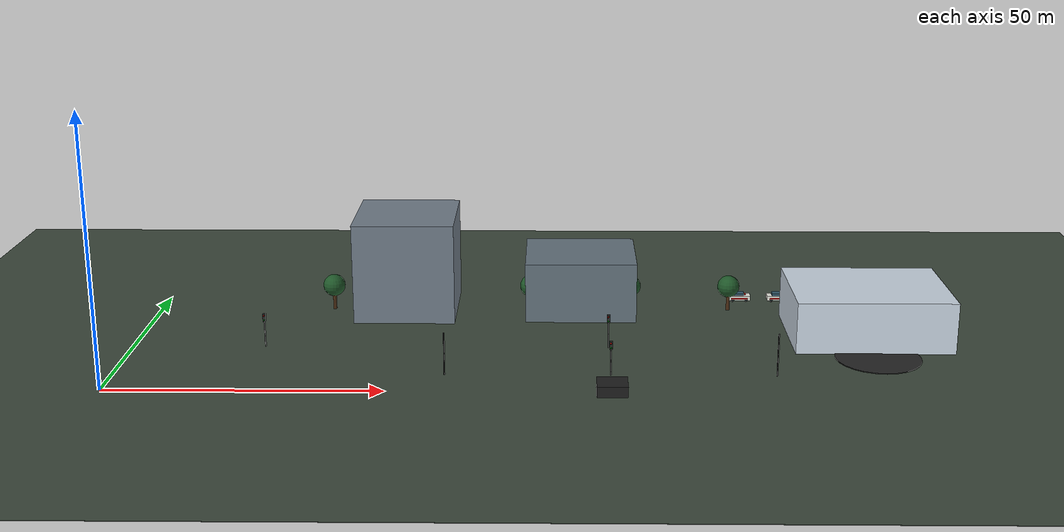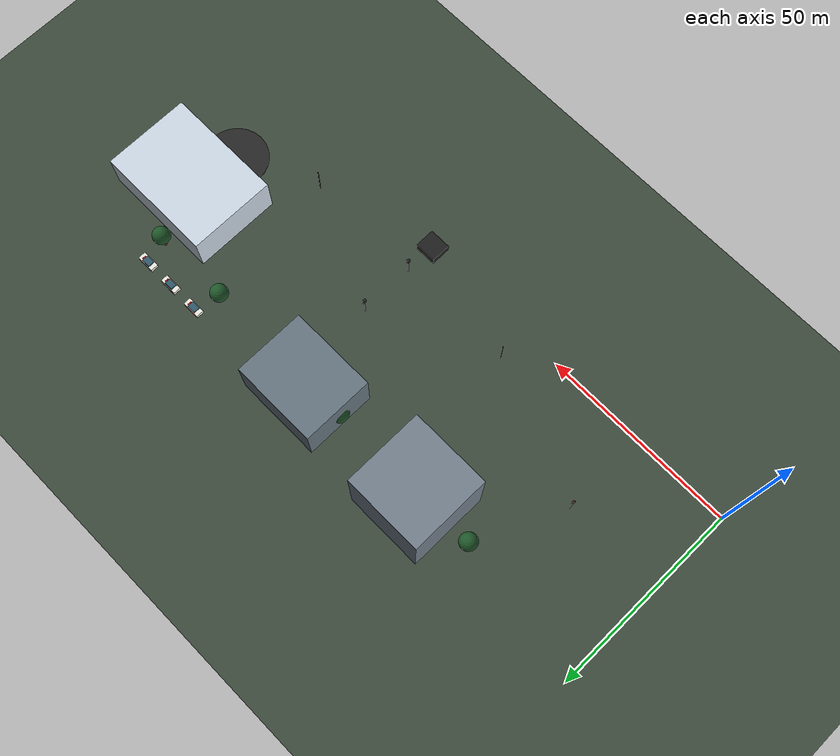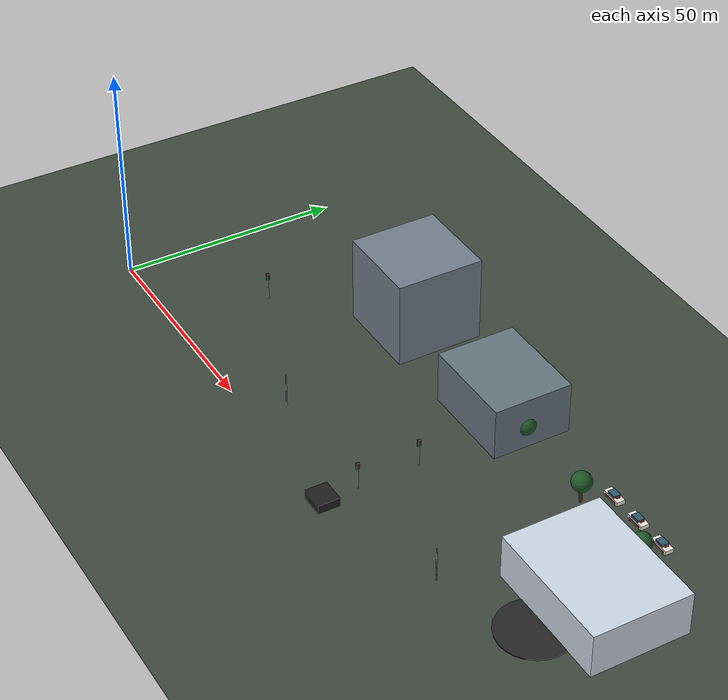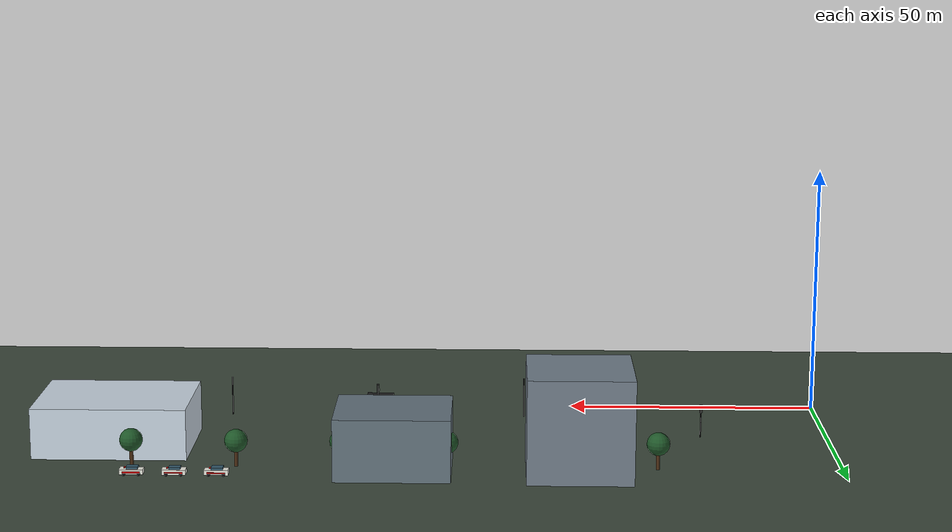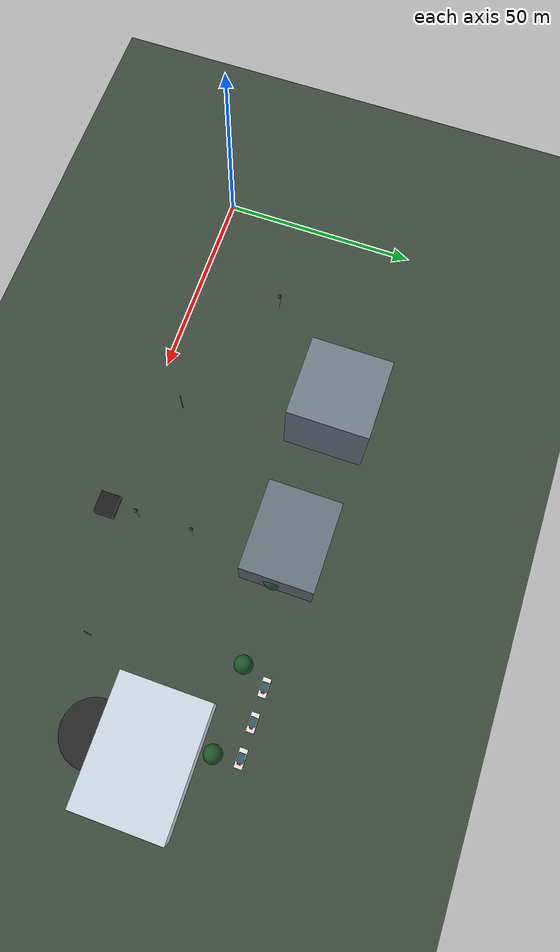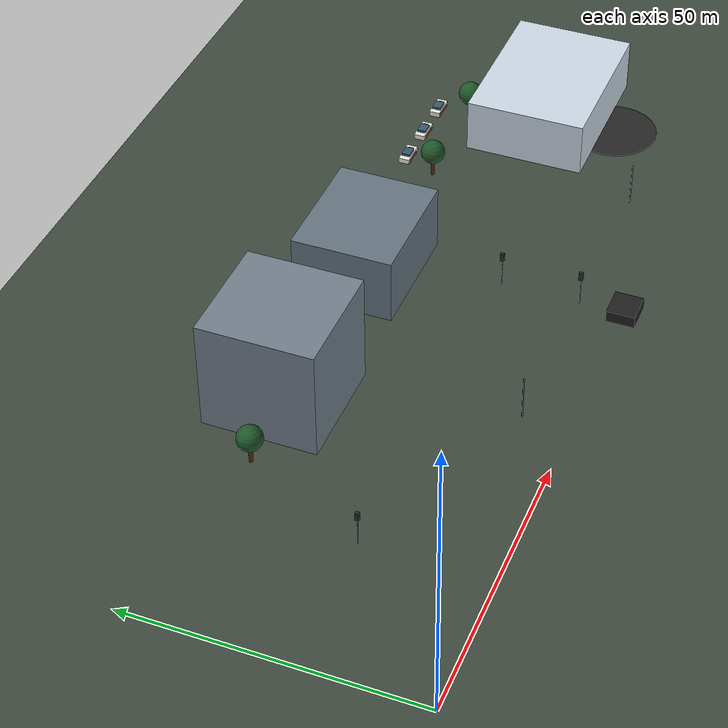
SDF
<sdf version="1.9">
 <world name="smart_city">
  <model name="hospital">
   <static>true</static>
   <pose>140 30 5 0 0 0</pose>
   <link name="building">
    <collision name="collision"><geometry><box><size>30 22 10</size></box></geometry></collision>
    <visual name="building">
     <geometry><box><size>30 22 10</size></box></geometry>
     <material><ambient>0.8 0.85 0.9 1</ambient><diffuse>0.8 0.85 0.9 1</diffuse></material>
    </visual>
   </link>
  </model>
  <model name="helipad">
   <static>true</static>
   <pose>140 17 0.08 0 0 0</pose>
   <link name="pad">
    <visual name="visual">
     <geometry><cylinder><radius>8</radius><length>0.15</length></cylinder></geometry>
     <material><ambient>0.15 0.15 0.15 1</ambient></material>
    </visual>
   </link>
  </model>
  <model name="building_2">
   <static>true</static>
   <pose>50 45 10 0 0 0</pose>
   <link name="building">
    <visual name="v">
     <geometry><box><size>20 20 20</size></box></geometry>
     <material><ambient>0.45 0.5 0.55 1</ambient></material>
    </visual>
   </link>
  </model>
  <model name="building_3">
   <static>true</static>
   <pose>85 45 6 0 0 0</pose>
   <link name="building">
    <visual name="v">
     <geometry><box><size>22 18 12</size></box></geometry>
     <material><ambient>0.4 0.46 0.5 1</ambient></material>
    </visual>
   </link>
  </model>
  <model name="roadblock_vehicle">
   <static>true</static>
   <pose>90 0 1 0 0 0</pose>
   <link name="vehicle">
    <collision name="collision"><geometry><box><size>5.5 5.0 2.0</size></box></geometry></collision>
    <visual name="vehicle">
     <geometry><box><size>5.5 5.0 2.0</size></box></geometry>
     <material><ambient>0.12 0.12 0.12 1</ambient><diffuse>0.12 0.12 0.12 1</diffuse></material>
    </visual>
   </link>
  </model>
  <model name="street_light_2">
   <static>true</static>
   <pose>60 8 4 0 0 0</pose>
   <link name="pole">
    <visual name="pole">
     <geometry><cylinder><radius>0.12</radius><length>8</length></cylinder></geometry>
     <material><ambient>0.15 0.15 0.15 1</ambient></material>
    </visual>
   </link>
  </model>
  <model name="street_light_3">
   <static>true</static>
   <pose>120 8 4 0 0 0</pose>
   <link name="pole">
    <visual name="pole">
     <geometry><cylinder><radius>0.12</radius><length>8</length></cylinder></geometry>
     <material><ambient>0.15 0.15 0.15 1</ambient></material>
    </visual>
   </link>
  </model>
  <model name="city_ground">
   <static>true</static>
   <pose>70 0 -0.05 0 0 0</pose>
   <link name="ground">
    <collision name="collision"><geometry><box><size>1500 1000 0.1</size></box></geometry></collision>
    <visual name="pavement">
     <geometry><box><size>1500 1000 0.1</size></box></geometry>
     <material><ambient>0.24 0.29 0.24 1</ambient><diffuse>0.24 0.29 0.24 1</diffuse></material>
    </visual>
   </link>
  </model>
  <model name="street_tree_03">
   <static>true</static>
   <pose>35 44 0 0 0 0</pose>
   <link name="tree">
    <visual name="trunk">
     <pose>0 0 2 0 0 0</pose>
     <geometry><cylinder><radius>0.35</radius><length>4</length></cylinder></geometry>
     <material><ambient>0.30 0.18 0.08 1</ambient><diffuse>0.30 0.18 0.08 1</diffuse></material>
    </visual>
    <visual name="crown">
     <pose>0 0 5 0 0 0</pose>
     <geometry><sphere><radius>2.2</radius></sphere></geometry>
     <material><ambient>0.12 0.34 0.16 1</ambient><diffuse>0.12 0.34 0.16 1</diffuse></material>
    </visual>
   </link>
  </model>
  <model name="street_tree_04">
   <static>true</static>
   <pose>55 44 0 0 0 0</pose>
   <link name="tree">
    <visual name="trunk">
     <pose>0 0 2 0 0 0</pose>
     <geometry><cylinder><radius>0.35</radius><length>4</length></cylinder></geometry>
     <material><ambient>0.30 0.18 0.08 1</ambient><diffuse>0.30 0.18 0.08 1</diffuse></material>
    </visual>
    <visual name="crown">
     <pose>0 0 5 0 0 0</pose>
     <geometry><sphere><radius>2.2</radius></sphere></geometry>
     <material><ambient>0.12 0.34 0.16 1</ambient><diffuse>0.12 0.34 0.16 1</diffuse></material>
    </visual>
   </link>
  </model>
  <model name="street_tree_05">
   <static>true</static>
   <pose>75 44 0 0 0 0</pose>
   <link name="tree">
    <visual name="trunk">
     <pose>0 0 2 0 0 0</pose>
     <geometry><cylinder><radius>0.35</radius><length>4</length></cylinder></geometry>
     <material><ambient>0.30 0.18 0.08 1</ambient><diffuse>0.30 0.18 0.08 1</diffuse></material>
    </visual>
    <visual name="crown">
     <pose>0 0 5 0 0 0</pose>
     <geometry><sphere><radius>2.2</radius></sphere></geometry>
     <material><ambient>0.12 0.34 0.16 1</ambient><diffuse>0.12 0.34 0.16 1</diffuse></material>
    </visual>
   </link>
  </model>
  <model name="street_tree_06">
   <static>true</static>
   <pose>95 44 0 0 0 0</pose>
   <link name="tree">
    <visual name="trunk">
     <pose>0 0 2 0 0 0</pose>
     <geometry><cylinder><radius>0.35</radius><length>4</length></cylinder></geometry>
     <material><ambient>0.30 0.18 0.08 1</ambient><diffuse>0.30 0.18 0.08 1</diffuse></material>
    </visual>
    <visual name="crown">
     <pose>0 0 5 0 0 0</pose>
     <geometry><sphere><radius>2.2</radius></sphere></geometry>
     <material><ambient>0.12 0.34 0.16 1</ambient><diffuse>0.12 0.34 0.16 1</diffuse></material>
    </visual>
   </link>
  </model>
  <model name="street_tree_07">
   <static>true</static>
   <pose>115 44 0 0 0 0</pose>
   <link name="tree">
    <visual name="trunk">
     <pose>0 0 2 0 0 0</pose>
     <geometry><cylinder><radius>0.35</radius><length>4</length></cylinder></geometry>
     <material><ambient>0.30 0.18 0.08 1</ambient><diffuse>0.30 0.18 0.08 1</diffuse></material>
    </visual>
    <visual name="crown">
     <pose>0 0 5 0 0 0</pose>
     <geometry><sphere><radius>2.2</radius></sphere></geometry>
     <material><ambient>0.12 0.34 0.16 1</ambient><diffuse>0.12 0.34 0.16 1</diffuse></material>
    </visual>
   </link>
  </model>
  <model name="street_tree_08">
   <static>true</static>
   <pose>135 44 0 0 0 0</pose>
   <link name="tree">
    <visual name="trunk">
     <pose>0 0 2 0 0 0</pose>
     <geometry><cylinder><radius>0.35</radius><length>4</length></cylinder></geometry>
     <material><ambient>0.30 0.18 0.08 1</ambient><diffuse>0.30 0.18 0.08 1</diffuse></material>
    </visual>
    <visual name="crown">
     <pose>0 0 5 0 0 0</pose>
     <geometry><sphere><radius>2.2</radius></sphere></geometry>
     <material><ambient>0.12 0.34 0.16 1</ambient><diffuse>0.12 0.34 0.16 1</diffuse></material>
    </visual>
   </link>
  </model>
  <model name="traffic_signal_2">
   <static>true</static>
   <pose>25 22 0 0 0 0</pose>
   <link name="signal">
    <visual name="mast">
     <pose>0 0 3 0 0 0</pose>
     <geometry><cylinder><radius>0.12</radius><length>6</length></cylinder></geometry>
     <material><ambient>0.12 0.12 0.12 1</ambient><diffuse>0.12 0.12 0.12 1</diffuse></material>
    </visual>
    <visual name="head">
     <pose>0 0 5.8 0 0 0</pose>
     <geometry><box><size>0.55 0.65 1.5</size></box></geometry>
     <material><ambient>0.16 0.17 0.16 1</ambient><diffuse>0.16 0.17 0.16 1</diffuse></material>
    </visual>
    <visual name="red_lamp">
     <pose>0 -0.34 6.2 0 0 0</pose>
     <geometry><sphere><radius>0.16</radius></sphere></geometry>
     <material>
      <ambient>0.9 0.04 0.02 1</ambient>
      <diffuse>0.9 0.04 0.02 1</diffuse>
      <emissive>0.6 0 0 1</emissive>
     </material>
    </visual>
    <visual name="green_lamp">
     <pose>0 -0.34 5.35 0 0 0</pose>
     <geometry><sphere><radius>0.16</radius></sphere></geometry>
     <material><ambient>0.02 0.7 0.12 1</ambient><diffuse>0.02 0.7 0.12 1</diffuse></material>
    </visual>
   </link>
  </model>
  <model name="traffic_signal_3">
   <static>true</static>
   <pose>90 8 0 0 0 0</pose>
   <link name="signal">
    <visual name="mast">
     <pose>0 0 3 0 0 0</pose>
     <geometry><cylinder><radius>0.12</radius><length>6</length></cylinder></geometry>
     <material><ambient>0.12 0.12 0.12 1</ambient><diffuse>0.12 0.12 0.12 1</diffuse></material>
    </visual>
    <visual name="head">
     <pose>0 0 5.8 0 0 0</pose>
     <geometry><box><size>0.55 0.65 1.5</size></box></geometry>
     <material><ambient>0.16 0.17 0.16 1</ambient><diffuse>0.16 0.17 0.16 1</diffuse></material>
    </visual>
    <visual name="red_lamp">
     <pose>0 -0.34 6.2 0 0 0</pose>
     <geometry><sphere><radius>0.16</radius></sphere></geometry>
     <material>
      <ambient>0.9 0.04 0.02 1</ambient>
      <diffuse>0.9 0.04 0.02 1</diffuse>
      <emissive>0.6 0 0 1</emissive>
     </material>
    </visual>
    <visual name="green_lamp">
     <pose>0 -0.34 5.35 0 0 0</pose>
     <geometry><sphere><radius>0.16</radius></sphere></geometry>
     <material><ambient>0.02 0.7 0.12 1</ambient><diffuse>0.02 0.7 0.12 1</diffuse></material>
    </visual>
   </link>
  </model>
  <model name="traffic_signal_4">
   <static>true</static>
   <pose>90 22 0 0 0 0</pose>
   <link name="signal">
    <visual name="mast">
     <pose>0 0 3 0 0 0</pose>
     <geometry><cylinder><radius>0.12</radius><length>6</length></cylinder></geometry>
     <material><ambient>0.12 0.12 0.12 1</ambient><diffuse>0.12 0.12 0.12 1</diffuse></material>
    </visual>
    <visual name="head">
     <pose>0 0 5.8 0 0 0</pose>
     <geometry><box><size>0.55 0.65 1.5</size></box></geometry>
     <material><ambient>0.16 0.17 0.16 1</ambient><diffuse>0.16 0.17 0.16 1</diffuse></material>
    </visual>
    <visual name="red_lamp">
     <pose>0 -0.34 6.2 0 0 0</pose>
     <geometry><sphere><radius>0.16</radius></sphere></geometry>
     <material>
      <ambient>0.9 0.04 0.02 1</ambient>
      <diffuse>0.9 0.04 0.02 1</diffuse>
      <emissive>0.6 0 0 1</emissive>
     </material>
    </visual>
    <visual name="green_lamp">
     <pose>0 -0.34 5.35 0 0 0</pose>
     <geometry><sphere><radius>0.16</radius></sphere></geometry>
     <material><ambient>0.02 0.7 0.12 1</ambient><diffuse>0.02 0.7 0.12 1</diffuse></material>
    </visual>
   </link>
  </model>
  <model name="parked_ambulance_01">
   <static>true</static>
   <pose>118 50 0 0 0 0.0000</pose>
   <link name="base_link">
    <pose>0 0 0.72 0 0 0</pose>
    <inertial>
     <mass>650</mass>
     <inertia><ixx>487.5</ixx><iyy>715.0</iyy><izz>910.0</izz><ixy>0</ixy><ixz>0</ixz><iyz>0</iyz></inertia>
    </inertial>
    <collision name="body_collision"><geometry><box><size>4.5 1.95 0.96</size></box></geometry></collision>
    <visual name="body">
     <geometry><box><size>4.5 1.95 0.96</size></box></geometry>
     <material><ambient>0.92 0.92 0.88 1</ambient><diffuse>0.92 0.92 0.88 1</diffuse></material>
    </visual>
    <visual name="cabin">
     <pose>-0.15 0 0.63 0 0 0</pose>
     <geometry><box><size>2.16 1.60 0.63</size></box></geometry>
     <material><ambient>0.20 0.35 0.42 1</ambient><diffuse>0.20 0.35 0.42 1</diffuse></material>
    </visual>
    <visual name="red_emergency_stripe_-1">
     <pose>0 -0.990 -0.06 0 0 0</pose>
     <geometry><box><size>3.42 0.035 0.28</size></box></geometry>
     <material><ambient>0.82 0.025 0.02 1</ambient><diffuse>0.82 0.025 0.02 1</diffuse></material>
    </visual>
    <visual name="red_emergency_stripe_1">
     <pose>0 0.990 -0.06 0 0 0</pose>
     <geometry><box><size>3.42 0.035 0.28</size></box></geometry>
     <material><ambient>0.82 0.025 0.02 1</ambient><diffuse>0.82 0.025 0.02 1</diffuse></material>
    </visual>
    <visual name="blue_lightbar">
     <pose>-0.1 0 0.8 0 0 0</pose>
     <geometry><box><size>0.8 0.3 0.16</size></box></geometry>
     <material>
      <ambient>0.02 0.16 0.95 1</ambient>
      <diffuse>0.02 0.16 0.95 1</diffuse>
      <emissive>0.02 0.08 0.65 1</emissive>
     </material>
    </visual>
    <visual name="roof_cross">
     <pose>1.25 0 0.66 0 0 0</pose>
     <geometry><box><size>0.3 0.92 0.08</size></box></geometry>
     <material><ambient>0.9 0.04 0.02 1</ambient><diffuse>0.9 0.04 0.02 1</diffuse></material>
    </visual>
    <collision name="wheel_collision_r_r">
     <pose>-1.40 -0.90 -0.38 1.5708 0 0</pose>
     <geometry><cylinder><radius>0.34</radius><length>0.20</length></cylinder></geometry>
     <surface><friction><ode><mu>0.004</mu><mu2>0.004</mu2></ode></friction></surface>
    </collision>
    <visual name="wheel_r_r">
     <pose>-1.40 -0.90 -0.38 1.5708 0 0</pose>
     <geometry><cylinder><radius>0.34</radius><length>0.20</length></cylinder></geometry>
     <material><ambient>0.055 0.055 0.06 1</ambient><diffuse>0.055 0.055 0.06 1</diffuse></material>
    </visual>
    <collision name="wheel_collision_r_l">
     <pose>-1.40 0.90 -0.38 1.5708 0 0</pose>
     <geometry><cylinder><radius>0.34</radius><length>0.20</length></cylinder></geometry>
     <surface><friction><ode><mu>0.004</mu><mu2>0.004</mu2></ode></friction></surface>
    </collision>
    <visual name="wheel_r_l">
     <pose>-1.40 0.90 -0.38 1.5708 0 0</pose>
     <geometry><cylinder><radius>0.34</radius><length>0.20</length></cylinder></geometry>
     <material><ambient>0.055 0.055 0.06 1</ambient><diffuse>0.055 0.055 0.06 1</diffuse></material>
    </visual>
    <collision name="wheel_collision_f_r">
     <pose>1.40 -0.90 -0.38 1.5708 0 0</pose>
     <geometry><cylinder><radius>0.34</radius><length>0.20</length></cylinder></geometry>
     <surface><friction><ode><mu>0.004</mu><mu2>0.004</mu2></ode></friction></surface>
    </collision>
    <visual name="wheel_f_r">
     <pose>1.40 -0.90 -0.38 1.5708 0 0</pose>
     <geometry><cylinder><radius>0.34</radius><length>0.20</length></cylinder></geometry>
     <material><ambient>0.055 0.055 0.06 1</ambient><diffuse>0.055 0.055 0.06 1</diffuse></material>
    </visual>
    <collision name="wheel_collision_f_l">
     <pose>1.40 0.90 -0.38 1.5708 0 0</pose>
     <geometry><cylinder><radius>0.34</radius><length>0.20</length></cylinder></geometry>
     <surface><friction><ode><mu>0.004</mu><mu2>0.004</mu2></ode></friction></surface>
    </collision>
    <visual name="wheel_f_l">
     <pose>1.40 0.90 -0.38 1.5708 0 0</pose>
     <geometry><cylinder><radius>0.34</radius><length>0.20</length></cylinder></geometry>
     <material><ambient>0.055 0.055 0.06 1</ambient><diffuse>0.055 0.055 0.06 1</diffuse></material>
    </visual>
   </link>
  </model>
  <model name="parked_ambulance_02">
   <static>true</static>
   <pose>126 50 0 0 0 0.0000</pose>
   <link name="base_link">
    <pose>0 0 0.72 0 0 0</pose>
    <inertial>
     <mass>650</mass>
     <inertia><ixx>487.5</ixx><iyy>715.0</iyy><izz>910.0</izz><ixy>0</ixy><ixz>0</ixz><iyz>0</iyz></inertia>
    </inertial>
    <collision name="body_collision"><geometry><box><size>4.5 1.95 0.96</size></box></geometry></collision>
    <visual name="body">
     <geometry><box><size>4.5 1.95 0.96</size></box></geometry>
     <material><ambient>0.92 0.92 0.88 1</ambient><diffuse>0.92 0.92 0.88 1</diffuse></material>
    </visual>
    <visual name="cabin">
     <pose>-0.15 0 0.63 0 0 0</pose>
     <geometry><box><size>2.16 1.60 0.63</size></box></geometry>
     <material><ambient>0.20 0.35 0.42 1</ambient><diffuse>0.20 0.35 0.42 1</diffuse></material>
    </visual>
    <visual name="red_emergency_stripe_-1">
     <pose>0 -0.990 -0.06 0 0 0</pose>
     <geometry><box><size>3.42 0.035 0.28</size></box></geometry>
     <material><ambient>0.82 0.025 0.02 1</ambient><diffuse>0.82 0.025 0.02 1</diffuse></material>
    </visual>
    <visual name="red_emergency_stripe_1">
     <pose>0 0.990 -0.06 0 0 0</pose>
     <geometry><box><size>3.42 0.035 0.28</size></box></geometry>
     <material><ambient>0.82 0.025 0.02 1</ambient><diffuse>0.82 0.025 0.02 1</diffuse></material>
    </visual>
    <visual name="blue_lightbar">
     <pose>-0.1 0 0.8 0 0 0</pose>
     <geometry><box><size>0.8 0.3 0.16</size></box></geometry>
     <material>
      <ambient>0.02 0.16 0.95 1</ambient>
      <diffuse>0.02 0.16 0.95 1</diffuse>
      <emissive>0.02 0.08 0.65 1</emissive>
     </material>
    </visual>
    <visual name="roof_cross">
     <pose>1.25 0 0.66 0 0 0</pose>
     <geometry><box><size>0.3 0.92 0.08</size></box></geometry>
     <material><ambient>0.9 0.04 0.02 1</ambient><diffuse>0.9 0.04 0.02 1</diffuse></material>
    </visual>
    <collision name="wheel_collision_r_r">
     <pose>-1.40 -0.90 -0.38 1.5708 0 0</pose>
     <geometry><cylinder><radius>0.34</radius><length>0.20</length></cylinder></geometry>
     <surface><friction><ode><mu>0.004</mu><mu2>0.004</mu2></ode></friction></surface>
    </collision>
    <visual name="wheel_r_r">
     <pose>-1.40 -0.90 -0.38 1.5708 0 0</pose>
     <geometry><cylinder><radius>0.34</radius><length>0.20</length></cylinder></geometry>
     <material><ambient>0.055 0.055 0.06 1</ambient><diffuse>0.055 0.055 0.06 1</diffuse></material>
    </visual>
    <collision name="wheel_collision_r_l">
     <pose>-1.40 0.90 -0.38 1.5708 0 0</pose>
     <geometry><cylinder><radius>0.34</radius><length>0.20</length></cylinder></geometry>
     <surface><friction><ode><mu>0.004</mu><mu2>0.004</mu2></ode></friction></surface>
    </collision>
    <visual name="wheel_r_l">
     <pose>-1.40 0.90 -0.38 1.5708 0 0</pose>
     <geometry><cylinder><radius>0.34</radius><length>0.20</length></cylinder></geometry>
     <material><ambient>0.055 0.055 0.06 1</ambient><diffuse>0.055 0.055 0.06 1</diffuse></material>
    </visual>
    <collision name="wheel_collision_f_r">
     <pose>1.40 -0.90 -0.38 1.5708 0 0</pose>
     <geometry><cylinder><radius>0.34</radius><length>0.20</length></cylinder></geometry>
     <surface><friction><ode><mu>0.004</mu><mu2>0.004</mu2></ode></friction></surface>
    </collision>
    <visual name="wheel_f_r">
     <pose>1.40 -0.90 -0.38 1.5708 0 0</pose>
     <geometry><cylinder><radius>0.34</radius><length>0.20</length></cylinder></geometry>
     <material><ambient>0.055 0.055 0.06 1</ambient><diffuse>0.055 0.055 0.06 1</diffuse></material>
    </visual>
    <collision name="wheel_collision_f_l">
     <pose>1.40 0.90 -0.38 1.5708 0 0</pose>
     <geometry><cylinder><radius>0.34</radius><length>0.20</length></cylinder></geometry>
     <surface><friction><ode><mu>0.004</mu><mu2>0.004</mu2></ode></friction></surface>
    </collision>
    <visual name="wheel_f_l">
     <pose>1.40 0.90 -0.38 1.5708 0 0</pose>
     <geometry><cylinder><radius>0.34</radius><length>0.20</length></cylinder></geometry>
     <material><ambient>0.055 0.055 0.06 1</ambient><diffuse>0.055 0.055 0.06 1</diffuse></material>
    </visual>
   </link>
  </model>
  <model name="parked_ambulance_03">
   <static>true</static>
   <pose>134 50 0 0 0 0.0000</pose>
   <link name="base_link">
    <pose>0 0 0.72 0 0 0</pose>
    <inertial>
     <mass>650</mass>
     <inertia><ixx>487.5</ixx><iyy>715.0</iyy><izz>910.0</izz><ixy>0</ixy><ixz>0</ixz><iyz>0</iyz></inertia>
    </inertial>
    <collision name="body_collision"><geometry><box><size>4.5 1.95 0.96</size></box></geometry></collision>
    <visual name="body">
     <geometry><box><size>4.5 1.95 0.96</size></box></geometry>
     <material><ambient>0.92 0.92 0.88 1</ambient><diffuse>0.92 0.92 0.88 1</diffuse></material>
    </visual>
    <visual name="cabin">
     <pose>-0.15 0 0.63 0 0 0</pose>
     <geometry><box><size>2.16 1.60 0.63</size></box></geometry>
     <material><ambient>0.20 0.35 0.42 1</ambient><diffuse>0.20 0.35 0.42 1</diffuse></material>
    </visual>
    <visual name="red_emergency_stripe_-1">
     <pose>0 -0.990 -0.06 0 0 0</pose>
     <geometry><box><size>3.42 0.035 0.28</size></box></geometry>
     <material><ambient>0.82 0.025 0.02 1</ambient><diffuse>0.82 0.025 0.02 1</diffuse></material>
    </visual>
    <visual name="red_emergency_stripe_1">
     <pose>0 0.990 -0.06 0 0 0</pose>
     <geometry><box><size>3.42 0.035 0.28</size></box></geometry>
     <material><ambient>0.82 0.025 0.02 1</ambient><diffuse>0.82 0.025 0.02 1</diffuse></material>
    </visual>
    <visual name="blue_lightbar">
     <pose>-0.1 0 0.8 0 0 0</pose>
     <geometry><box><size>0.8 0.3 0.16</size></box></geometry>
     <material>
      <ambient>0.02 0.16 0.95 1</ambient>
      <diffuse>0.02 0.16 0.95 1</diffuse>
      <emissive>0.02 0.08 0.65 1</emissive>
     </material>
    </visual>
    <visual name="roof_cross">
     <pose>1.25 0 0.66 0 0 0</pose>
     <geometry><box><size>0.3 0.92 0.08</size></box></geometry>
     <material><ambient>0.9 0.04 0.02 1</ambient><diffuse>0.9 0.04 0.02 1</diffuse></material>
    </visual>
    <collision name="wheel_collision_r_r">
     <pose>-1.40 -0.90 -0.38 1.5708 0 0</pose>
     <geometry><cylinder><radius>0.34</radius><length>0.20</length></cylinder></geometry>
     <surface><friction><ode><mu>0.004</mu><mu2>0.004</mu2></ode></friction></surface>
    </collision>
    <visual name="wheel_r_r">
     <pose>-1.40 -0.90 -0.38 1.5708 0 0</pose>
     <geometry><cylinder><radius>0.34</radius><length>0.20</length></cylinder></geometry>
     <material><ambient>0.055 0.055 0.06 1</ambient><diffuse>0.055 0.055 0.06 1</diffuse></material>
    </visual>
    <collision name="wheel_collision_r_l">
     <pose>-1.40 0.90 -0.38 1.5708 0 0</pose>
     <geometry><cylinder><radius>0.34</radius><length>0.20</length></cylinder></geometry>
     <surface><friction><ode><mu>0.004</mu><mu2>0.004</mu2></ode></friction></surface>
    </collision>
    <visual name="wheel_r_l">
     <pose>-1.40 0.90 -0.38 1.5708 0 0</pose>
     <geometry><cylinder><radius>0.34</radius><length>0.20</length></cylinder></geometry>
     <material><ambient>0.055 0.055 0.06 1</ambient><diffuse>0.055 0.055 0.06 1</diffuse></material>
    </visual>
    <collision name="wheel_collision_f_r">
     <pose>1.40 -0.90 -0.38 1.5708 0 0</pose>
     <geometry><cylinder><radius>0.34</radius><length>0.20</length></cylinder></geometry>
     <surface><friction><ode><mu>0.004</mu><mu2>0.004</mu2></ode></friction></surface>
    </collision>
    <visual name="wheel_f_r">
     <pose>1.40 -0.90 -0.38 1.5708 0 0</pose>
     <geometry><cylinder><radius>0.34</radius><length>0.20</length></cylinder></geometry>
     <material><ambient>0.055 0.055 0.06 1</ambient><diffuse>0.055 0.055 0.06 1</diffuse></material>
    </visual>
    <collision name="wheel_collision_f_l">
     <pose>1.40 0.90 -0.38 1.5708 0 0</pose>
     <geometry><cylinder><radius>0.34</radius><length>0.20</length></cylinder></geometry>
     <surface><friction><ode><mu>0.004</mu><mu2>0.004</mu2></ode></friction></surface>
    </collision>
    <visual name="wheel_f_l">
     <pose>1.40 0.90 -0.38 1.5708 0 0</pose>
     <geometry><cylinder><radius>0.34</radius><length>0.20</length></cylinder></geometry>
     <material><ambient>0.055 0.055 0.06 1</ambient><diffuse>0.055 0.055 0.06 1</diffuse></material>
    </visual>
   </link>
  </model>
 </world>
</sdf>
